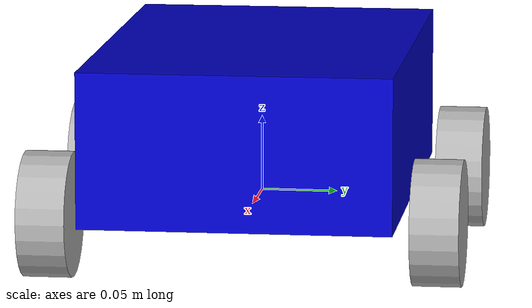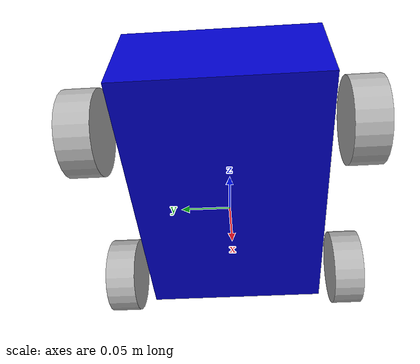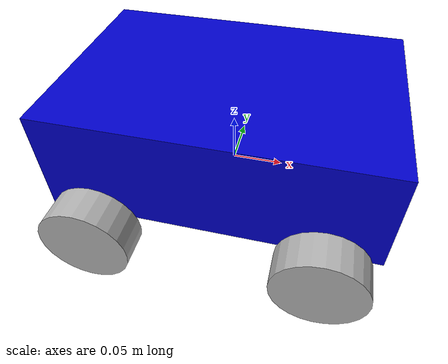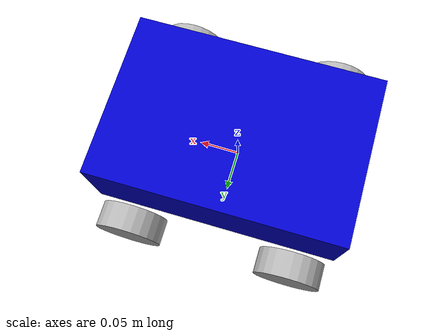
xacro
<?xml version="1.0"?>
<robot xmlns:xacro="http://www.ros.org/wiki/xacro" name="my_robot">

    <xacro:property name="wheel_radius" value="0.041275"/>
    <xacro:property name="wheel_length" value="0.03175"/>
    <xacro:property name="wheel_mass" value="0.5"/>
    <xacro:property name="base_length" value="0.3048"/>
    <xacro:property name="base_width" value="0.2032"/>
    <xacro:property name="base_height" value="0.1016"/>
    <xacro:property name="base_mass" value="10"/>
    <xacro:property name="wheel_offset_x" value="0.1016"/>
    <xacro:property name="wheel_offset_y" value="0.127"/>

    <material name="gray">
        <color rgba="0.7 0.7 0.7 1"/>
    </material>

    <material name="green">
        <color rgba="0 0.6 0 1"/>
    </material>

    <material name="white">
        <color rgba="1 1 1 1"/>
    </material>

    <material name="blue">
        <color rgba="0 0 0.8 1"/>
    </material>

    <xacro:macro name="wheel_link" params="prefix">
        <link name="${prefix}_wheel">
            <visual>
                <geometry>
                    <cylinder radius="${wheel_radius}" length="${wheel_length}"/>
                </geometry>
                <origin xyz="0 0 0" rpy="1.57 0 0"/>
                <material name="gray"/>
                </visual>
                <collision>
                <geometry>
                    <cylinder radius="${wheel_radius}" length="${wheel_length}"/>
                </geometry>
                <origin xyz="0 0 0" rpy="1.57 0 0"/>
                </collision>
                <inertial>
                    <mass value="${wheel_mass}"/>
                    <origin xyz="0 0 0"/>
                    <inertia ixx="1e-4" ixy="0.0" ixz="0.0" iyy="1e-4" iyz="0.0" izz="1e-4"/>
            </inertial>
        </link>
    </xacro:macro>

    <xacro:macro name="wheel_joint" params="name parent child x y">
        <joint name="${name}" type="continuous">
            <parent link="${parent}"/>
            <child link="${child}"/>
            <origin xyz="${x} ${y} 0" rpy="0 0 0"/>
            <axis xyz="0 1 0"/>
        </joint>
    </xacro:macro>

    <xacro:macro name="my_robot" params="">
        <link name="base_link">
            <visual>
                <origin rpy="0 0 0" xyz="0 0 ${base_height / 2}"/>
                <geometry>
                    <box size="${base_length} ${base_width} ${base_height}"/>
                </geometry>
                <material name="blue"/>
            </visual>
            <collision>
                <geometry>
                    <box size="${base_length} ${base_width} ${base_height}"/>
                </geometry>
                <origin xyz="0 0 ${base_height / 2}" rpy="0 0 0"/>
            </collision>
            <inertial>
            <mass value="${base_mass}"/>
            <origin xyz="0 0 ${base_height / 2}"/>
            <inertia ixx="1e-3" ixy="0.0" ixz="0.0" iyy="1e-3" iyz="0.0" izz="1e-3"/>
        </inertial>
    </link>

    <xacro:wheel_link prefix="back_left"/>
    <xacro:wheel_link prefix="back_right"/>
    <xacro:wheel_link prefix="front_left"/>
    <xacro:wheel_link prefix="front_right"/>

    <xacro:wheel_joint name="back_left_wheel_joint" parent="base_link" child="back_left_wheel" x="-${wheel_offset_x}" y="-${wheel_offset_y}"/>
    <xacro:wheel_joint name="back_right_wheel_joint" parent="base_link" child="back_right_wheel" x="-${wheel_offset_x}" y="${wheel_offset_y}"/>
    <xacro:wheel_joint name="front_left_wheel_joint" parent="base_link" child="front_left_wheel" x="${wheel_offset_x}" y="-${wheel_offset_y}"/>
    <xacro:wheel_joint name="front_right_wheel_joint" parent="base_link" child="front_right_wheel" x="${wheel_offset_x}" y="${wheel_offset_y}"/>
    </xacro:macro>

    <xacro:my_robot/>
</robot>
